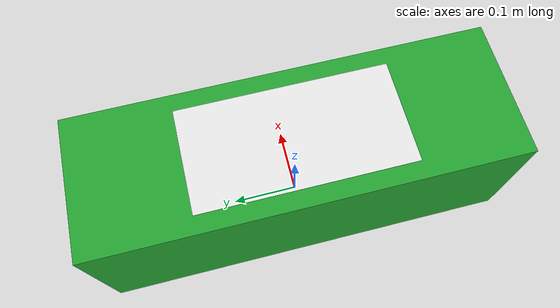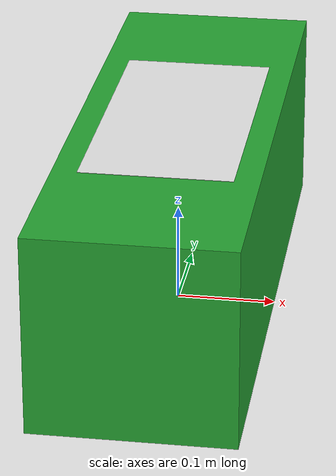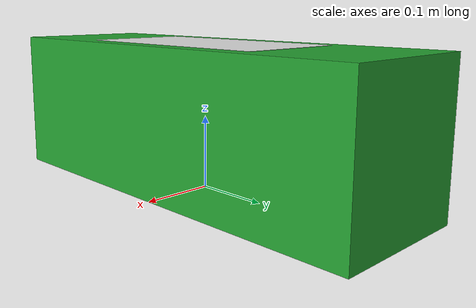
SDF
<?xml version='1.0'?>
<sdf version='1.6'>

<model name="single_green_brick">
  <link name="Green_brick_link">
    <pose frame=''>0 0 0.1 0 -0 0</pose>

    <inertial>
	  <mass>0.01</mass>
      <inertia>
	    <ixx>0.000333330</ixx>
        <ixy>0</ixy>
        <ixz>0</ixz>
        <iyy>0.0000666667</iyy>
        <iyz>0</iyz>
        <izz>0.0003333330</izz>
	  </inertia>
    </inertial>

    <visual name="visual">
	  <material>
	    <script>
		  <uri>gazebo.material</uri>
		  <name>Gazebo/Green</name>
		</script>
	  </material>
      <geometry>
        <box>
          <size>0.2 0.6 0.2</size>
        </box>
      </geometry>
    </visual>

    <visual name="visual FM plate">
      <pose>0 0 0.1 0 -0 0</pose>
	  <material>
	    <script>
	      <uri>gazebo.material</uri>
		  <name>Gazebo/White</name>
		</script>
	  </material>
      <geometry>
        <box>
          <size>0.150 0.300 0.001</size>
        </box>
      </geometry>
    </visual>

    <collision name="collision">
      <geometry>
        <box>
          <size>0.2 0.6 0.2</size>
        </box>
      </geometry>
    </collision>
  </link>
</model>

</sdf>
